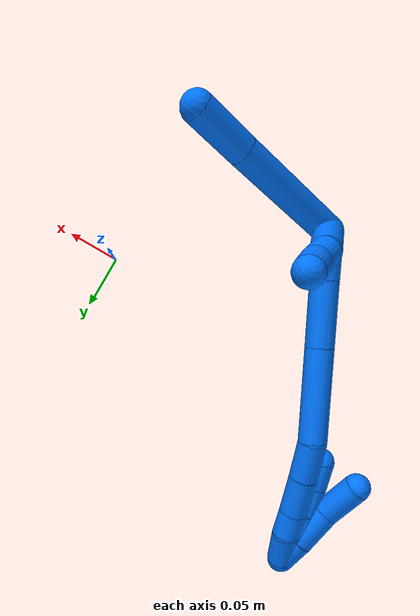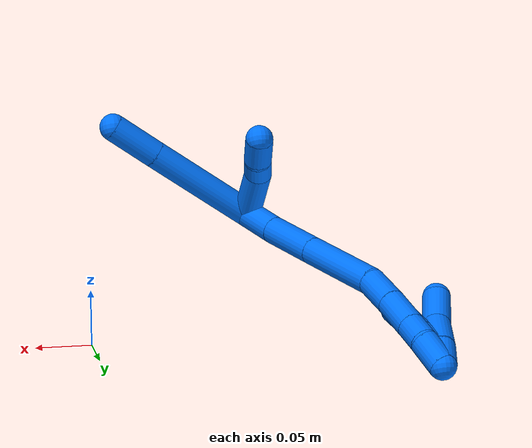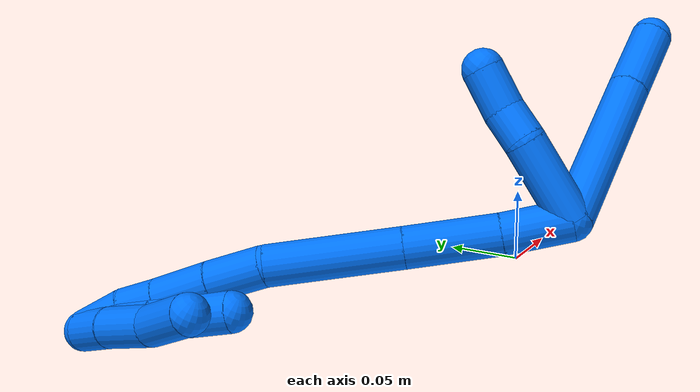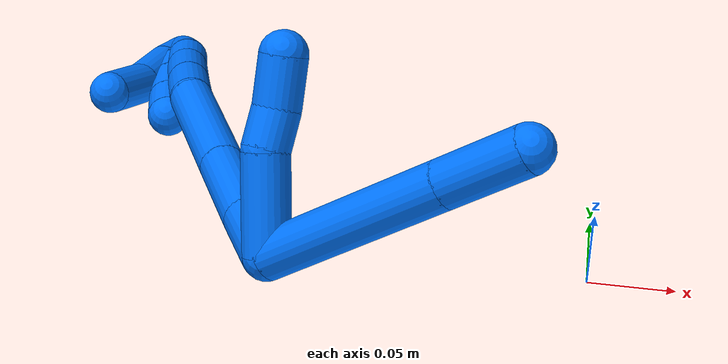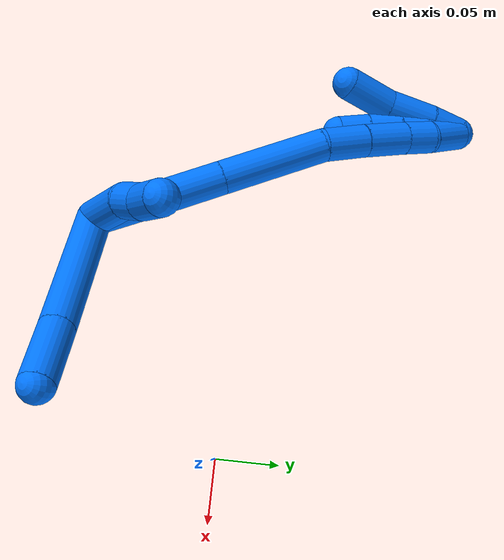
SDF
<sdf version="1.7">
 <world name="default">
  <model name="14">
   <static>0</static>
   <link name="14">
    <collision name="collision-cylinder-e_1_2_8">
     <pose>0.043992 0.000971 0.027669 -0.035071 1.00907 -0.019368</pose>
     <geometry><cylinder><radius>0.0125</radius><length>0.103957</length></cylinder></geometry>
     <surface>
      <friction><ode><mu>1.16</mu><mu2>1.16</mu2><slip1>0</slip1><slip2>0</slip2></ode></friction>
      <contact><ode><kp>1e+06</kp><kd>1</kd><max_vel>0</max_vel><min_depth>0.001</min_depth></ode></contact>
     </surface>
    </collision>
    <visual name="visual-cylinder-e_1_2_8">
     <pose>0.043992 0.000971 0.027669 -0.035071 1.00907 -0.019368</pose>
     <geometry><cylinder><radius>0.0125</radius><length>0.103957</length></cylinder></geometry>
     <material><ambient>0 0.462745 1 1</ambient></material>
    </visual>
    <collision name="collision-cylinder-e_2_8_6">
     <pose>0.107326 0.002234 0.067819 -0.023455 0.997655 -0.012778</pose>
     <geometry><cylinder><radius>0.0125</radius><length>0.046043</length></cylinder></geometry>
     <surface>
      <friction><ode><mu>1.16</mu><mu2>1.16</mu2><slip1>0</slip1><slip2>0</slip2></ode></friction>
      <contact><ode><kp>1e+06</kp><kd>1</kd><max_vel>0</max_vel><min_depth>0.001</min_depth></ode></contact>
     </surface>
    </collision>
    <visual name="visual-cylinder-e_2_8_6">
     <pose>0.107326 0.002234 0.067819 -0.023455 0.997655 -0.012778</pose>
     <geometry><cylinder><radius>0.0125</radius><length>0.046043</length></cylinder></geometry>
     <material><ambient>0 0.462745 1 1</ambient></material>
    </visual>
    <collision name="collision-cylinder-e_1_2_9">
     <pose>0.003823 0.022574 0.012451 -1.06676 0.147215 -0.087028</pose>
     <geometry><cylinder><radius>0.0125</radius><length>0.052124</length></cylinder></geometry>
     <surface>
      <friction><ode><mu>1.16</mu><mu2>1.16</mu2><slip1>0</slip1><slip2>0</slip2></ode></friction>
      <contact><ode><kp>1e+06</kp><kd>1</kd><max_vel>0</max_vel><min_depth>0.001</min_depth></ode></contact>
     </surface>
    </collision>
    <visual name="visual-cylinder-e_1_2_9">
     <pose>0.003823 0.022574 0.012451 -1.06676 0.147215 -0.087028</pose>
     <geometry><cylinder><radius>0.0125</radius><length>0.052124</length></cylinder></geometry>
     <material><ambient>0 0.462745 1 1</ambient></material>
    </visual>
    <collision name="collision-cylinder-e_2_9_10">
     <pose>0.011902 0.054292 0.028276 -1.21728 0.411716 -0.289017</pose>
     <geometry><cylinder><radius>0.0125</radius><length>0.02127</length></cylinder></geometry>
     <surface>
      <friction><ode><mu>1.16</mu><mu2>1.16</mu2><slip1>0</slip1><slip2>0</slip2></ode></friction>
      <contact><ode><kp>1e+06</kp><kd>1</kd><max_vel>0</max_vel><min_depth>0.001</min_depth></ode></contact>
     </surface>
    </collision>
    <visual name="visual-cylinder-e_2_9_10">
     <pose>0.011902 0.054292 0.028276 -1.21728 0.411716 -0.289017</pose>
     <geometry><cylinder><radius>0.0125</radius><length>0.02127</length></cylinder></geometry>
     <material><ambient>0 0.462745 1 1</ambient></material>
    </visual>
    <collision name="collision-cylinder-e_3_10_5">
     <pose>0.019942 0.074434 0.038106 -1.04001 0.288445 -0.165928</pose>
     <geometry><cylinder><radius>0.0125</radius><length>0.026606</length></cylinder></geometry>
     <surface>
      <friction><ode><mu>1.16</mu><mu2>1.16</mu2><slip1>0</slip1><slip2>0</slip2></ode></friction>
      <contact><ode><kp>1e+06</kp><kd>1</kd><max_vel>0</max_vel><min_depth>0.001</min_depth></ode></contact>
     </surface>
    </collision>
    <visual name="visual-cylinder-e_3_10_5">
     <pose>0.019942 0.074434 0.038106 -1.04001 0.288445 -0.165928</pose>
     <geometry><cylinder><radius>0.0125</radius><length>0.026606</length></cylinder></geometry>
     <material><ambient>0 0.462745 1 1</ambient></material>
    </visual>
    <collision name="collision-cylinder-e_1_2_11">
     <pose>-0.004469 0.015354 -0.012481 -2.25336 -0.222153 0.4605</pose>
     <geometry><cylinder><radius>0.0125</radius><length>0.040571</length></cylinder></geometry>
     <surface>
      <friction><ode><mu>1.16</mu><mu2>1.16</mu2><slip1>0</slip1><slip2>0</slip2></ode></friction>
      <contact><ode><kp>1e+06</kp><kd>1</kd><max_vel>0</max_vel><min_depth>0.001</min_depth></ode></contact>
     </surface>
    </collision>
    <visual name="visual-cylinder-e_1_2_11">
     <pose>-0.004469 0.015354 -0.012481 -2.25336 -0.222153 0.4605</pose>
     <geometry><cylinder><radius>0.0125</radius><length>0.040571</length></cylinder></geometry>
     <material><ambient>0 0.462745 1 1</ambient></material>
    </visual>
    <collision name="collision-cylinder-e_2_11_12">
     <pose>-0.014959 0.053006 -0.040794 -2.1882 -0.216665 0.415134</pose>
     <geometry><cylinder><radius>0.0125</radius><length>0.056003</length></cylinder></geometry>
     <surface>
      <friction><ode><mu>1.16</mu><mu2>1.16</mu2><slip1>0</slip1><slip2>0</slip2></ode></friction>
      <contact><ode><kp>1e+06</kp><kd>1</kd><max_vel>0</max_vel><min_depth>0.001</min_depth></ode></contact>
     </surface>
    </collision>
    <visual name="visual-cylinder-e_2_11_12">
     <pose>-0.014959 0.053006 -0.040794 -2.1882 -0.216665 0.415134</pose>
     <geometry><cylinder><radius>0.0125</radius><length>0.056003</length></cylinder></geometry>
     <material><ambient>0 0.462745 1 1</ambient></material>
    </visual>
    <collision name="collision-cylinder-e_3_12_13">
     <pose>-0.029593 0.107755 -0.079353 -2.18178 -0.214107 0.407209</pose>
     <geometry><cylinder><radius>0.0125</radius><length>0.081088</length></cylinder></geometry>
     <surface>
      <friction><ode><mu>1.16</mu><mu2>1.16</mu2><slip1>0</slip1><slip2>0</slip2></ode></friction>
      <contact><ode><kp>1e+06</kp><kd>1</kd><max_vel>0</max_vel><min_depth>0.001</min_depth></ode></contact>
     </surface>
    </collision>
    <visual name="visual-cylinder-e_3_12_13">
     <pose>-0.029593 0.107755 -0.079353 -2.18178 -0.214107 0.407209</pose>
     <geometry><cylinder><radius>0.0125</radius><length>0.081088</length></cylinder></geometry>
     <material><ambient>0 0.462745 1 1</ambient></material>
    </visual>
    <collision name="collision-cylinder-e_4_13_14">
     <pose>-0.039711 0.151783 -0.114484 -2.39057 -0.088425 0.223519</pose>
     <geometry><cylinder><radius>0.0125</radius><length>0.034066</length></cylinder></geometry>
     <surface>
      <friction><ode><mu>1.16</mu><mu2>1.16</mu2><slip1>0</slip1><slip2>0</slip2></ode></friction>
      <contact><ode><kp>1e+06</kp><kd>1</kd><max_vel>0</max_vel><min_depth>0.001</min_depth></ode></contact>
     </surface>
    </collision>
    <visual name="visual-cylinder-e_4_13_14">
     <pose>-0.039711 0.151783 -0.114484 -2.39057 -0.088425 0.223519</pose>
     <geometry><cylinder><radius>0.0125</radius><length>0.034066</length></cylinder></geometry>
     <material><ambient>0 0.462745 1 1</ambient></material>
    </visual>
    <collision name="collision-cylinder-e_5_14_15">
     <pose>-0.042484 0.174702 -0.140091 -2.43198 -0.072746 0.195814</pose>
     <geometry><cylinder><radius>0.0125</radius><length>0.034904</length></cylinder></geometry>
     <surface>
      <friction><ode><mu>1.16</mu><mu2>1.16</mu2><slip1>0</slip1><slip2>0</slip2></ode></friction>
      <contact><ode><kp>1e+06</kp><kd>1</kd><max_vel>0</max_vel><min_depth>0.001</min_depth></ode></contact>
     </surface>
    </collision>
    <visual name="visual-cylinder-e_5_14_15">
     <pose>-0.042484 0.174702 -0.140091 -2.43198 -0.072746 0.195814</pose>
     <geometry><cylinder><radius>0.0125</radius><length>0.034904</length></cylinder></geometry>
     <material><ambient>0 0.462745 1 1</ambient></material>
    </visual>
    <collision name="collision-cylinder-e_6_15_16">
     <pose>-0.044183 0.193941 -0.162067 -2.40851 -0.036487 0.094983</pose>
     <geometry><cylinder><radius>0.0125</radius><length>0.023624</length></cylinder></geometry>
     <surface>
      <friction><ode><mu>1.16</mu><mu2>1.16</mu2><slip1>0</slip1><slip2>0</slip2></ode></friction>
      <contact><ode><kp>1e+06</kp><kd>1</kd><max_vel>0</max_vel><min_depth>0.001</min_depth></ode></contact>
     </surface>
    </collision>
    <visual name="visual-cylinder-e_6_15_16">
     <pose>-0.044183 0.193941 -0.162067 -2.40851 -0.036487 0.094983</pose>
     <geometry><cylinder><radius>0.0125</radius><length>0.023624</length></cylinder></geometry>
     <material><ambient>0 0.462745 1 1</ambient></material>
    </visual>
    <collision name="collision-cylinder-e_7_16_1">
     <pose>-0.04719 0.209669 -0.183218 -2.57765 -0.17408 0.585153</pose>
     <geometry><cylinder><radius>0.0125</radius><length>0.029744</length></cylinder></geometry>
     <surface>
      <friction><ode><mu>1.16</mu><mu2>1.16</mu2><slip1>0</slip1><slip2>0</slip2></ode></friction>
      <contact><ode><kp>1e+06</kp><kd>1</kd><max_vel>0</max_vel><min_depth>0.001</min_depth></ode></contact>
     </surface>
    </collision>
    <visual name="visual-cylinder-e_7_16_1">
     <pose>-0.04719 0.209669 -0.183218 -2.57765 -0.17408 0.585153</pose>
     <geometry><cylinder><radius>0.0125</radius><length>0.029744</length></cylinder></geometry>
     <material><ambient>0 0.462745 1 1</ambient></material>
    </visual>
    <collision name="collision-cylinder-e_1_1_17">
     <pose>-0.05229 0.207654 -0.18458 0.729262 -0.16917 -0.064704</pose>
     <geometry><cylinder><radius>0.0125</radius><length>0.029977</length></cylinder></geometry>
     <surface>
      <friction><ode><mu>1.16</mu><mu2>1.16</mu2><slip1>0</slip1><slip2>0</slip2></ode></friction>
      <contact><ode><kp>1e+06</kp><kd>1</kd><max_vel>0</max_vel><min_depth>0.001</min_depth></ode></contact>
     </surface>
    </collision>
    <visual name="visual-cylinder-e_1_1_17">
     <pose>-0.05229 0.207654 -0.18458 0.729262 -0.16917 -0.064704</pose>
     <geometry><cylinder><radius>0.0125</radius><length>0.029977</length></cylinder></geometry>
     <material><ambient>0 0.462745 1 1</ambient></material>
    </visual>
    <collision name="collision-cylinder-e_2_17_18">
     <pose>-0.054919 0.190111 -0.166901 0.857402 -0.010447 -0.004775</pose>
     <geometry><cylinder><radius>0.0125</radius><length>0.020363</length></cylinder></geometry>
     <surface>
      <friction><ode><mu>1.16</mu><mu2>1.16</mu2><slip1>0</slip1><slip2>0</slip2></ode></friction>
      <contact><ode><kp>1e+06</kp><kd>1</kd><max_vel>0</max_vel><min_depth>0.001</min_depth></ode></contact>
     </surface>
    </collision>
    <visual name="visual-cylinder-e_2_17_18">
     <pose>-0.054919 0.190111 -0.166901 0.857402 -0.010447 -0.004775</pose>
     <geometry><cylinder><radius>0.0125</radius><length>0.020363</length></cylinder></geometry>
     <material><ambient>0 0.462745 1 1</ambient></material>
    </visual>
    <collision name="collision-cylinder-e_3_18_19">
     <pose>-0.055487 0.172377 -0.152171 0.893704 -0.035817 -0.017164</pose>
     <geometry><cylinder><radius>0.0125</radius><length>0.025769</length></cylinder></geometry>
     <surface>
      <friction><ode><mu>1.16</mu><mu2>1.16</mu2><slip1>0</slip1><slip2>0</slip2></ode></friction>
      <contact><ode><kp>1e+06</kp><kd>1</kd><max_vel>0</max_vel><min_depth>0.001</min_depth></ode></contact>
     </surface>
    </collision>
    <visual name="visual-cylinder-e_3_18_19">
     <pose>-0.055487 0.172377 -0.152171 0.893704 -0.035817 -0.017164</pose>
     <geometry><cylinder><radius>0.0125</radius><length>0.025769</length></cylinder></geometry>
     <material><ambient>0 0.462745 1 1</ambient></material>
    </visual>
    <collision name="collision-cylinder-e_4_19_4">
     <pose>-0.055853 0.153107 -0.136527 0.883726 0.007982 0.003776</pose>
     <geometry><cylinder><radius>0.0125</radius><length>0.023892</length></cylinder></geometry>
     <surface>
      <friction><ode><mu>1.16</mu><mu2>1.16</mu2><slip1>0</slip1><slip2>0</slip2></ode></friction>
      <contact><ode><kp>1e+06</kp><kd>1</kd><max_vel>0</max_vel><min_depth>0.001</min_depth></ode></contact>
     </surface>
    </collision>
    <visual name="visual-cylinder-e_4_19_4">
     <pose>-0.055853 0.153107 -0.136527 0.883726 0.007982 0.003776</pose>
     <geometry><cylinder><radius>0.0125</radius><length>0.023892</length></cylinder></geometry>
     <material><ambient>0 0.462745 1 1</ambient></material>
    </visual>
    <collision name="collision-cylinder-e_1_1_20">
     <pose>-0.054974 0.210108 -0.186231 0.668062 -0.411634 -0.144651</pose>
     <geometry><cylinder><radius>0.0125</radius><length>0.026035</length></cylinder></geometry>
     <surface>
      <friction><ode><mu>1.16</mu><mu2>1.16</mu2><slip1>0</slip1><slip2>0</slip2></ode></friction>
      <contact><ode><kp>1e+06</kp><kd>1</kd><max_vel>0</max_vel><min_depth>0.001</min_depth></ode></contact>
     </surface>
    </collision>
    <visual name="visual-cylinder-e_1_1_20">
     <pose>-0.054974 0.210108 -0.186231 0.668062 -0.411634 -0.144651</pose>
     <geometry><cylinder><radius>0.0125</radius><length>0.026035</length></cylinder></geometry>
     <material><ambient>0 0.462745 1 1</ambient></material>
    </visual>
    <collision name="collision-cylinder-e_2_20_21">
     <pose>-0.066805 0.191078 -0.164318 0.747852 -0.369164 -0.146262</pose>
     <geometry><cylinder><radius>0.0125</radius><length>0.036703</length></cylinder></geometry>
     <surface>
      <friction><ode><mu>1.16</mu><mu2>1.16</mu2><slip1>0</slip1><slip2>0</slip2></ode></friction>
      <contact><ode><kp>1e+06</kp><kd>1</kd><max_vel>0</max_vel><min_depth>0.001</min_depth></ode></contact>
     </surface>
    </collision>
    <visual name="visual-cylinder-e_2_20_21">
     <pose>-0.066805 0.191078 -0.164318 0.747852 -0.369164 -0.146262</pose>
     <geometry><cylinder><radius>0.0125</radius><length>0.036703</length></cylinder></geometry>
     <material><ambient>0 0.462745 1 1</ambient></material>
    </visual>
    <collision name="collision-cylinder-e_3_21_3">
     <pose>-0.08097 0.170676 -0.137161 0.540296 -0.416845 -0.116999</pose>
     <geometry><cylinder><radius>0.0125</radius><length>0.037262</length></cylinder></geometry>
     <surface>
      <friction><ode><mu>1.16</mu><mu2>1.16</mu2><slip1>0</slip1><slip2>0</slip2></ode></friction>
      <contact><ode><kp>1e+06</kp><kd>1</kd><max_vel>0</max_vel><min_depth>0.001</min_depth></ode></contact>
     </surface>
    </collision>
    <visual name="visual-cylinder-e_3_21_3">
     <pose>-0.08097 0.170676 -0.137161 0.540296 -0.416845 -0.116999</pose>
     <geometry><cylinder><radius>0.0125</radius><length>0.037262</length></cylinder></geometry>
     <material><ambient>0 0.462745 1 1</ambient></material>
    </visual>
    <collision name="collision-sphere-3">
     <pose>-0.088513 0.161913 -0.122552 0 -0 0</pose>
     <geometry><sphere><radius>0.0125</radius></sphere></geometry>
     <surface>
      <friction><ode><mu>1.16</mu><mu2>1.16</mu2><slip1>0</slip1><slip2>0</slip2></ode></friction>
      <contact><ode><kp>1e+06</kp><kd>1</kd><max_vel>0</max_vel><min_depth>0.001</min_depth></ode></contact>
     </surface>
    </collision>
    <visual name="visual-sphere-3">
     <pose>-0.088513 0.161913 -0.122552 0 -0 0</pose>
     <geometry><sphere><radius>0.0125</radius></sphere></geometry>
     <material><ambient>0 0.462745 1 1</ambient></material>
    </visual>
    <collision name="collision-sphere-21">
     <pose>-0.073427 0.179439 -0.15177 0 -0 0</pose>
     <geometry><sphere><radius>0.0125</radius></sphere></geometry>
     <surface>
      <friction><ode><mu>1.16</mu><mu2>1.16</mu2><slip1>0</slip1><slip2>0</slip2></ode></friction>
      <contact><ode><kp>1e+06</kp><kd>1</kd><max_vel>0</max_vel><min_depth>0.001</min_depth></ode></contact>
     </surface>
    </collision>
    <visual name="visual-sphere-21">
     <pose>-0.073427 0.179439 -0.15177 0 -0 0</pose>
     <geometry><sphere><radius>0.0125</radius></sphere></geometry>
     <material><ambient>0 0.462745 1 1</ambient></material>
    </visual>
    <collision name="collision-sphere-20">
     <pose>-0.060183 0.202718 -0.176866 0 -0 0</pose>
     <geometry><sphere><radius>0.0125</radius></sphere></geometry>
     <surface>
      <friction><ode><mu>1.16</mu><mu2>1.16</mu2><slip1>0</slip1><slip2>0</slip2></ode></friction>
      <contact><ode><kp>1e+06</kp><kd>1</kd><max_vel>0</max_vel><min_depth>0.001</min_depth></ode></contact>
     </surface>
    </collision>
    <visual name="visual-sphere-20">
     <pose>-0.060183 0.202718 -0.176866 0 -0 0</pose>
     <geometry><sphere><radius>0.0125</radius></sphere></geometry>
     <material><ambient>0 0.462745 1 1</ambient></material>
    </visual>
    <collision name="collision-sphere-4">
     <pose>-0.055758 0.143872 -0.128951 0 -0 0</pose>
     <geometry><sphere><radius>0.0125</radius></sphere></geometry>
     <surface>
      <friction><ode><mu>1.16</mu><mu2>1.16</mu2><slip1>0</slip1><slip2>0</slip2></ode></friction>
      <contact><ode><kp>1e+06</kp><kd>1</kd><max_vel>0</max_vel><min_depth>0.001</min_depth></ode></contact>
     </surface>
    </collision>
    <visual name="visual-sphere-4">
     <pose>-0.055758 0.143872 -0.128951 0 -0 0</pose>
     <geometry><sphere><radius>0.0125</radius></sphere></geometry>
     <material><ambient>0 0.462745 1 1</ambient></material>
    </visual>
    <collision name="collision-sphere-5">
     <pose>0.023726 0.085433 0.044562 0 -0 0</pose>
     <geometry><sphere><radius>0.0125</radius></sphere></geometry>
     <surface>
      <friction><ode><mu>1.16</mu><mu2>1.16</mu2><slip1>0</slip1><slip2>0</slip2></ode></friction>
      <contact><ode><kp>1e+06</kp><kd>1</kd><max_vel>0</max_vel><min_depth>0.001</min_depth></ode></contact>
     </surface>
    </collision>
    <visual name="visual-sphere-5">
     <pose>0.023726 0.085433 0.044562 0 -0 0</pose>
     <geometry><sphere><radius>0.0125</radius></sphere></geometry>
     <material><ambient>0 0.462745 1 1</ambient></material>
    </visual>
    <collision name="collision-sphere-10">
     <pose>0.016158 0.063435 0.03165 0 -0 0</pose>
     <geometry><sphere><radius>0.0125</radius></sphere></geometry>
     <surface>
      <friction><ode><mu>1.16</mu><mu2>1.16</mu2><slip1>0</slip1><slip2>0</slip2></ode></friction>
      <contact><ode><kp>1e+06</kp><kd>1</kd><max_vel>0</max_vel><min_depth>0.001</min_depth></ode></contact>
     </surface>
    </collision>
    <visual name="visual-sphere-10">
     <pose>0.016158 0.063435 0.03165 0 -0 0</pose>
     <geometry><sphere><radius>0.0125</radius></sphere></geometry>
     <material><ambient>0 0.462745 1 1</ambient></material>
    </visual>
    <collision name="collision-sphere-6">
     <pose>0.126668 0.002527 0.080299 0 -0 0</pose>
     <geometry><sphere><radius>0.0125</radius></sphere></geometry>
     <surface>
      <friction><ode><mu>1.16</mu><mu2>1.16</mu2><slip1>0</slip1><slip2>0</slip2></ode></friction>
      <contact><ode><kp>1e+06</kp><kd>1</kd><max_vel>0</max_vel><min_depth>0.001</min_depth></ode></contact>
     </surface>
    </collision>
    <visual name="visual-sphere-6">
     <pose>0.126668 0.002527 0.080299 0 -0 0</pose>
     <geometry><sphere><radius>0.0125</radius></sphere></geometry>
     <material><ambient>0 0.462745 1 1</ambient></material>
    </visual>
    <collision name="collision-sphere-9">
     <pose>0.007646 0.045148 0.024902 0 -0 0</pose>
     <geometry><sphere><radius>0.0125</radius></sphere></geometry>
     <surface>
      <friction><ode><mu>1.16</mu><mu2>1.16</mu2><slip1>0</slip1><slip2>0</slip2></ode></friction>
      <contact><ode><kp>1e+06</kp><kd>1</kd><max_vel>0</max_vel><min_depth>0.001</min_depth></ode></contact>
     </surface>
    </collision>
    <visual name="visual-sphere-9">
     <pose>0.007646 0.045148 0.024902 0 -0 0</pose>
     <geometry><sphere><radius>0.0125</radius></sphere></geometry>
     <material><ambient>0 0.462745 1 1</ambient></material>
    </visual>
    <collision name="collision-sphere-2">
     <geometry><sphere><radius>0.0125</radius></sphere></geometry>
     <surface>
      <friction><ode><mu>1.16</mu><mu2>1.16</mu2><slip1>0</slip1><slip2>0</slip2></ode></friction>
      <contact><ode><kp>1e+06</kp><kd>1</kd><max_vel>0</max_vel><min_depth>0.001</min_depth></ode></contact>
     </surface>
    </collision>
    <visual name="visual-sphere-2">
     <geometry><sphere><radius>0.0125</radius></sphere></geometry>
     <material><ambient>0 0.462745 1 1</ambient></material>
    </visual>
    <collision name="collision-sphere-19">
     <pose>-0.055949 0.162342 -0.144104 0 -0 0</pose>
     <geometry><sphere><radius>0.0125</radius></sphere></geometry>
     <surface>
      <friction><ode><mu>1.16</mu><mu2>1.16</mu2><slip1>0</slip1><slip2>0</slip2></ode></friction>
      <contact><ode><kp>1e+06</kp><kd>1</kd><max_vel>0</max_vel><min_depth>0.001</min_depth></ode></contact>
     </surface>
    </collision>
    <visual name="visual-sphere-19">
     <pose>-0.055949 0.162342 -0.144104 0 -0 0</pose>
     <geometry><sphere><radius>0.0125</radius></sphere></geometry>
     <material><ambient>0 0.462745 1 1</ambient></material>
    </visual>
    <collision name="collision-sphere-8">
     <pose>0.087983 0.001942 0.055339 0 -0 0</pose>
     <geometry><sphere><radius>0.0125</radius></sphere></geometry>
     <surface>
      <friction><ode><mu>1.16</mu><mu2>1.16</mu2><slip1>0</slip1><slip2>0</slip2></ode></friction>
      <contact><ode><kp>1e+06</kp><kd>1</kd><max_vel>0</max_vel><min_depth>0.001</min_depth></ode></contact>
     </surface>
    </collision>
    <visual name="visual-sphere-8">
     <pose>0.087983 0.001942 0.055339 0 -0 0</pose>
     <geometry><sphere><radius>0.0125</radius></sphere></geometry>
     <material><ambient>0 0.462745 1 1</ambient></material>
    </visual>
    <collision name="collision-sphere-11">
     <pose>-0.008939 0.030708 -0.024962 0 -0 0</pose>
     <geometry><sphere><radius>0.0125</radius></sphere></geometry>
     <surface>
      <friction><ode><mu>1.16</mu><mu2>1.16</mu2><slip1>0</slip1><slip2>0</slip2></ode></friction>
      <contact><ode><kp>1e+06</kp><kd>1</kd><max_vel>0</max_vel><min_depth>0.001</min_depth></ode></contact>
     </surface>
    </collision>
    <visual name="visual-sphere-11">
     <pose>-0.008939 0.030708 -0.024962 0 -0 0</pose>
     <geometry><sphere><radius>0.0125</radius></sphere></geometry>
     <material><ambient>0 0.462745 1 1</ambient></material>
    </visual>
    <collision name="collision-sphere-12">
     <pose>-0.020978 0.075304 -0.056626 0 -0 0</pose>
     <geometry><sphere><radius>0.0125</radius></sphere></geometry>
     <surface>
      <friction><ode><mu>1.16</mu><mu2>1.16</mu2><slip1>0</slip1><slip2>0</slip2></ode></friction>
      <contact><ode><kp>1e+06</kp><kd>1</kd><max_vel>0</max_vel><min_depth>0.001</min_depth></ode></contact>
     </surface>
    </collision>
    <visual name="visual-sphere-12">
     <pose>-0.020978 0.075304 -0.056626 0 -0 0</pose>
     <geometry><sphere><radius>0.0125</radius></sphere></geometry>
     <material><ambient>0 0.462745 1 1</ambient></material>
    </visual>
    <collision name="collision-sphere-13">
     <pose>-0.038207 0.140206 -0.102081 0 -0 0</pose>
     <geometry><sphere><radius>0.0125</radius></sphere></geometry>
     <surface>
      <friction><ode><mu>1.16</mu><mu2>1.16</mu2><slip1>0</slip1><slip2>0</slip2></ode></friction>
      <contact><ode><kp>1e+06</kp><kd>1</kd><max_vel>0</max_vel><min_depth>0.001</min_depth></ode></contact>
     </surface>
    </collision>
    <visual name="visual-sphere-13">
     <pose>-0.038207 0.140206 -0.102081 0 -0 0</pose>
     <geometry><sphere><radius>0.0125</radius></sphere></geometry>
     <material><ambient>0 0.462745 1 1</ambient></material>
    </visual>
    <collision name="collision-sphere-14">
     <pose>-0.041216 0.163361 -0.126886 0 -0 0</pose>
     <geometry><sphere><radius>0.0125</radius></sphere></geometry>
     <surface>
      <friction><ode><mu>1.16</mu><mu2>1.16</mu2><slip1>0</slip1><slip2>0</slip2></ode></friction>
      <contact><ode><kp>1e+06</kp><kd>1</kd><max_vel>0</max_vel><min_depth>0.001</min_depth></ode></contact>
     </surface>
    </collision>
    <visual name="visual-sphere-14">
     <pose>-0.041216 0.163361 -0.126886 0 -0 0</pose>
     <geometry><sphere><radius>0.0125</radius></sphere></geometry>
     <material><ambient>0 0.462745 1 1</ambient></material>
    </visual>
    <collision name="collision-sphere-15">
     <pose>-0.043753 0.186042 -0.153295 0 -0 0</pose>
     <geometry><sphere><radius>0.0125</radius></sphere></geometry>
     <surface>
      <friction><ode><mu>1.16</mu><mu2>1.16</mu2><slip1>0</slip1><slip2>0</slip2></ode></friction>
      <contact><ode><kp>1e+06</kp><kd>1</kd><max_vel>0</max_vel><min_depth>0.001</min_depth></ode></contact>
     </surface>
    </collision>
    <visual name="visual-sphere-15">
     <pose>-0.043753 0.186042 -0.153295 0 -0 0</pose>
     <geometry><sphere><radius>0.0125</radius></sphere></geometry>
     <material><ambient>0 0.462745 1 1</ambient></material>
    </visual>
    <collision name="collision-sphere-16">
     <pose>-0.044614 0.20184 -0.170839 0 -0 0</pose>
     <geometry><sphere><radius>0.0125</radius></sphere></geometry>
     <surface>
      <friction><ode><mu>1.16</mu><mu2>1.16</mu2><slip1>0</slip1><slip2>0</slip2></ode></friction>
      <contact><ode><kp>1e+06</kp><kd>1</kd><max_vel>0</max_vel><min_depth>0.001</min_depth></ode></contact>
     </surface>
    </collision>
    <visual name="visual-sphere-16">
     <pose>-0.044614 0.20184 -0.170839 0 -0 0</pose>
     <geometry><sphere><radius>0.0125</radius></sphere></geometry>
     <material><ambient>0 0.462745 1 1</ambient></material>
    </visual>
    <collision name="collision-sphere-1">
     <pose>-0.049766 0.217498 -0.195597 0 -0 0</pose>
     <geometry><sphere><radius>0.0125</radius></sphere></geometry>
     <surface>
      <friction><ode><mu>1.16</mu><mu2>1.16</mu2><slip1>0</slip1><slip2>0</slip2></ode></friction>
      <contact><ode><kp>1e+06</kp><kd>1</kd><max_vel>0</max_vel><min_depth>0.001</min_depth></ode></contact>
     </surface>
    </collision>
    <visual name="visual-sphere-1">
     <pose>-0.049766 0.217498 -0.195597 0 -0 0</pose>
     <geometry><sphere><radius>0.0125</radius></sphere></geometry>
     <material><ambient>0 0.462745 1 1</ambient></material>
    </visual>
    <collision name="collision-sphere-18">
     <pose>-0.055026 0.182413 -0.160239 0 -0 0</pose>
     <geometry><sphere><radius>0.0125</radius></sphere></geometry>
     <surface>
      <friction><ode><mu>1.16</mu><mu2>1.16</mu2><slip1>0</slip1><slip2>0</slip2></ode></friction>
      <contact><ode><kp>1e+06</kp><kd>1</kd><max_vel>0</max_vel><min_depth>0.001</min_depth></ode></contact>
     </surface>
    </collision>
    <visual name="visual-sphere-18">
     <pose>-0.055026 0.182413 -0.160239 0 -0 0</pose>
     <geometry><sphere><radius>0.0125</radius></sphere></geometry>
     <material><ambient>0 0.462745 1 1</ambient></material>
    </visual>
    <collision name="collision-sphere-17">
     <pose>-0.054813 0.19781 -0.173563 0 -0 0</pose>
     <geometry><sphere><radius>0.0125</radius></sphere></geometry>
     <surface>
      <friction><ode><mu>1.16</mu><mu2>1.16</mu2><slip1>0</slip1><slip2>0</slip2></ode></friction>
      <contact><ode><kp>1e+06</kp><kd>1</kd><max_vel>0</max_vel><min_depth>0.001</min_depth></ode></contact>
     </surface>
    </collision>
    <visual name="visual-sphere-17">
     <pose>-0.054813 0.19781 -0.173563 0 -0 0</pose>
     <geometry><sphere><radius>0.0125</radius></sphere></geometry>
     <material><ambient>0 0.462745 1 1</ambient></material>
    </visual>
    <inertial>
     <pose>-0.014072 0.101293 -0.068181 0 -0 0</pose>
     <mass>0.75</mass>
     <inertia>
      <ixx>0.000206</ixx>
      <ixy>0</ixy>
      <ixz>0</ixz>
      <iyy>0.000132</iyy>
      <iyz>0</iyz>
      <izz>-0.000136</izz>
     </inertia>
    </inertial>
   </link>
   <pose>-0.160165 -0.098012 0.090217 0.481619 -0.103138 0.266174</pose>
  </model>
 </world>
</sdf>
